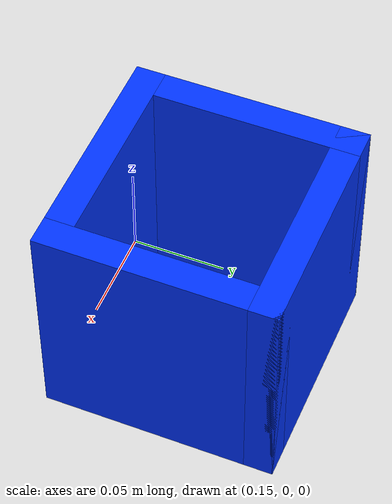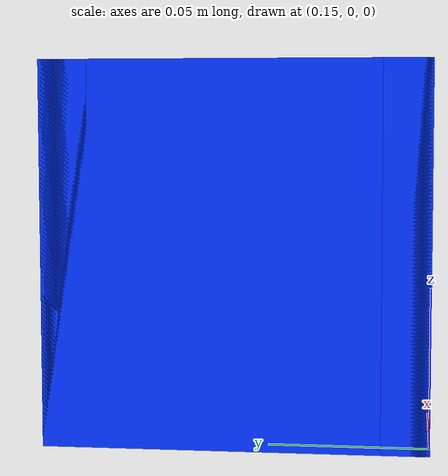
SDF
<?xml version="1.0"?>
<sdf version="1.10">
  <model name="blue_basket">
    <static>true</static>
    <!-- red_block과 같은 자리(0.20, 0.06). 바닥에서 시작해 위로 12cm. -->
    <pose>0.20 0.06 0 0 0 0</pose>

    <link name="link">
      <collision name="wall_px_collision">
        <pose>0.0525 0 0.06 0 0 0</pose>
        <geometry><box><size>0.015 0.12 0.12</size></box></geometry>
      </collision>
      <visual name="wall_px_visual">
        <pose>0.0525 0 0.06 0 0 0</pose>
        <geometry><box><size>0.015 0.12 0.12</size></box></geometry>
        <material><ambient>0 0.2 1 1</ambient><diffuse>0 0.2 1 1</diffuse><specular>0.1 0.1 0.1 1</specular></material>
      </visual>

      <collision name="wall_nx_collision">
        <pose>-0.0525 0 0.06 0 0 0</pose>
        <geometry><box><size>0.015 0.12 0.12</size></box></geometry>
      </collision>
      <visual name="wall_nx_visual">
        <pose>-0.0525 0 0.06 0 0 0</pose>
        <geometry><box><size>0.015 0.12 0.12</size></box></geometry>
        <material><ambient>0 0.2 1 1</ambient><diffuse>0 0.2 1 1</diffuse><specular>0.1 0.1 0.1 1</specular></material>
      </visual>

      <!-- +y 벽 (x로 길게 뻗어 모서리를 덮는다) -->
      <collision name="wall_py_collision">
        <pose>0 0.0525 0.06 0 0 0</pose>
        <geometry><box><size>0.12 0.015 0.12</size></box></geometry>
      </collision>
      <visual name="wall_py_visual">
        <pose>0 0.0525 0.06 0 0 0</pose>
        <geometry><box><size>0.12 0.015 0.12</size></box></geometry>
        <material><ambient>0 0.2 1 1</ambient><diffuse>0 0.2 1 1</diffuse><specular>0.1 0.1 0.1 1</specular></material>
      </visual>

      <collision name="wall_ny_collision">
        <pose>0 -0.0525 0.06 0 0 0</pose>
        <geometry><box><size>0.12 0.015 0.12</size></box></geometry>
      </collision>
      <visual name="wall_ny_visual">
        <pose>0 -0.0525 0.06 0 0 0</pose>
        <geometry><box><size>0.12 0.015 0.12</size></box></geometry>
        <material><ambient>0 0.2 1 1</ambient><diffuse>0 0.2 1 1</diffuse><specular>0.1 0.1 0.1 1</specular></material>
      </visual>
    </link>
  </model>
</sdf>
